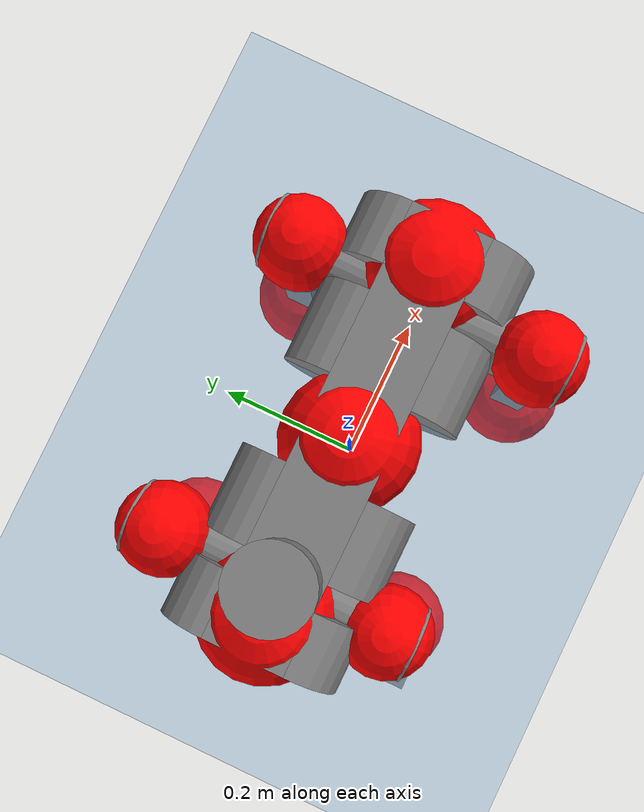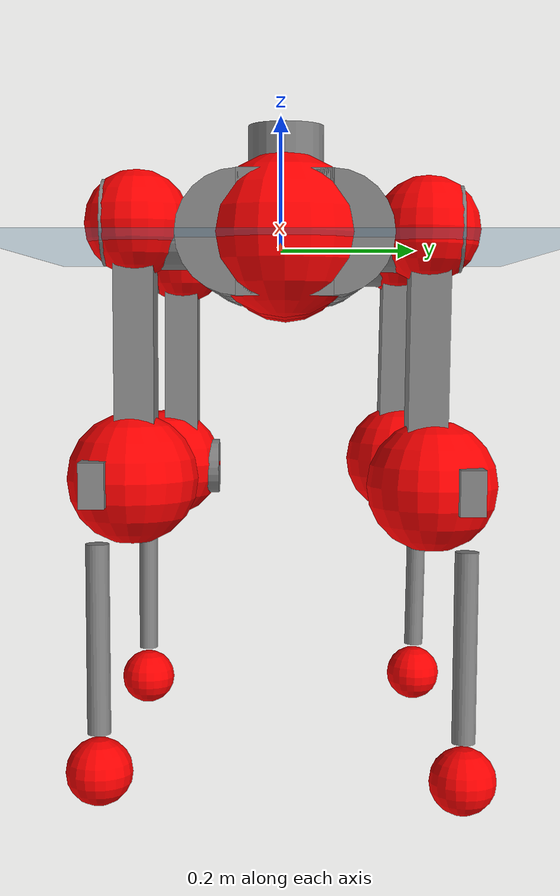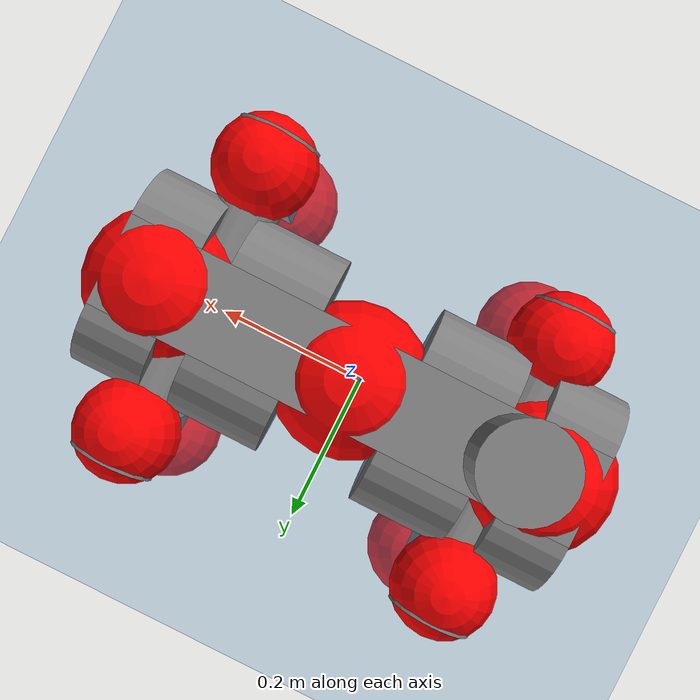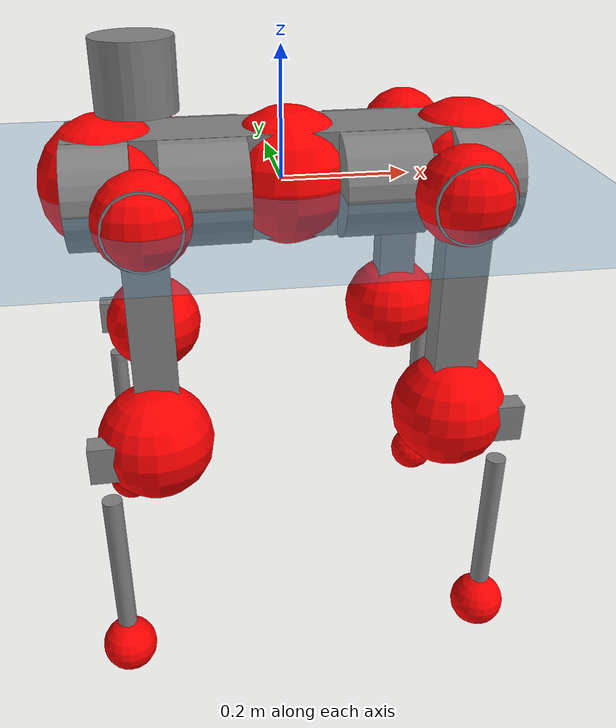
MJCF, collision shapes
<mujoco model="anymal_c">
  <compiler angle="radian" assetdir="assets" balanceinertia="true" inertiafromgeom="false"/>

  <option timestep="0.005" density="1.2" viscosity="2e-05"/>

  <size nkey="1"/>

  <visual>
    <quality shadowsize="8192"/>
    <map shadowclip="0.5"/>
  </visual>

  <default>
    <default class="/">
      <material specular="0" shininess="0.25"/>
      <geom contype="0" conaffinity="0" group="1" solref="-1000 -80"/>
      <site size="0.01 0.005 0.005" group="5"/>
      <general forcelimited="true" forcerange="-80 80" biastype="affine" gainprm="80" biasprm="0 -80 -2"/>
      <default class="anymal_c">
        <joint armature="0.01" damping="0.01" frictionloss="0.1"/>
        <default class="visual">
          <geom type="mesh" group="2"/>
          <default class="visual_zflip"/>
        </default>
        <default class="collision">
          <geom type="cylinder" group="3"/>
          <default class="foot">
            <geom size="0.03 0 0" type="sphere" condim="6" priority="1" friction="0.8 0.02 0.01" solimp="0.015 1 0.03"/>
          </default>
        </default>
      </default>
      <default class="reward_collision_sphere">
        <geom group="5" rgba="1 0 0 1"/>
      </default>
    </default>
  </default>

  <asset>
    <texture type="skybox" colorspace="auto" name="//unnamed_texture_0" builtin="gradient" rgb1="0.95 0.95 0.95" rgb2="0.95 0.95 0.95" width="100" height="600"/>
    <texture type="2d" colorspace="auto" name="texplane" builtin="checker" rgb1="0.345 0.575 0.748" rgb2="0.345 0.575 0.748" markrgb="1 1 1" width="512" height="512"/>
    <texture type="2d" colorspace="linear" name="base" file="base.png"/>
    <texture type="2d" colorspace="linear" name="top_shell" file="top_shell.png"/>
    <texture type="2d" colorspace="linear" name="bottom_shell" file="bottom_shell.png"/>
    <texture type="2d" colorspace="linear" name="remote" file="remote.png"/>
    <texture type="2d" colorspace="linear" name="hatch" file="hatch.png"/>
    <texture type="2d" colorspace="linear" name="handle" file="handle.png"/>
    <texture type="2d" colorspace="linear" name="face" file="face.png"/>
    <texture type="2d" colorspace="linear" name="battery" file="battery.png"/>
    <texture type="2d" colorspace="linear" name="lidar_cage" file="lidar_cage.png"/>
    <texture type="2d" colorspace="linear" name="depth_camera" file="depth_camera.png"/>
    <texture type="2d" colorspace="linear" name="wide_angle_camera" file="wide_angle_camera.png"/>
    <texture type="2d" colorspace="linear" name="lidar" file="lidar.png"/>
    <texture type="2d" colorspace="linear" name="drive" file="drive.png"/>
    <texture type="2d" colorspace="linear" name="hip_l" file="hip_l.png"/>
    <texture type="2d" colorspace="linear" name="shank_l" file="shank_l.png"/>
    <texture type="2d" colorspace="linear" name="foot" file="foot.png"/>
    <texture type="2d" colorspace="linear" name="thigh" file="thigh.png"/>
    <texture type="2d" colorspace="linear" name="shank_r" file="shank_r.png"/>
    <texture type="2d" colorspace="linear" name="hip_r" file="hip_r.png"/>
    <material name="MatPlane" class="/" texture="texplane" texuniform="true" texrepeat="2 2" specular="0.9" shininess="0.5"/>
    <material name="black_plastic" class="/" rgba="0.007 0.007 0.007 1"/>
    <material name="green" class="/" rgba="0.052 0.178 0.033 1"/>
    <material name="red" class="/" rgba="0.178 0.006 0.005 1"/>
    <material name="yellow" class="/" rgba="0.178 0.119 0.006 1"/>
    <material name="lwl" class="/" rgba="0.8 0.8 0.8 1"/>
    <material name="base" class="/" texture="base"/>
    <material name="top_shell" class="/" texture="top_shell"/>
    <material name="bottom_shell" class="/" texture="bottom_shell"/>
    <material name="hip_l" class="/" texture="hip_l"/>
    <material name="thigh" class="/" texture="thigh"/>
    <material name="shank_l" class="/" texture="shank_l"/>
    <material name="foot" class="/" texture="foot"/>
    <material name="hip_r" class="/" texture="hip_r"/>
    <material name="shank" class="/" texture="shank_r"/>
    <material name="hatch" class="/" texture="hatch"/>
    <material name="remote" class="/" texture="remote"/>
    <material name="handle" class="/" texture="handle"/>
    <material name="face" class="/" texture="face"/>
    <material name="depth_camera" class="/" texture="depth_camera"/>
    <material name="wide_angle_camera" class="/" texture="wide_angle_camera"/>
    <material name="battery" class="/" texture="battery"/>
    <material name="lidar_cage" class="/" texture="lidar_cage"/>
    <material name="lidar" class="/" texture="lidar"/>
    <material name="drive" class="/" texture="drive"/>
    <mesh name="base_0" class="/" file="base_0.obj"/>
    <mesh name="base_1" class="/" file="base_1.obj"/>
    <mesh name="base_2" class="/" file="base_2.obj"/>
    <mesh name="base_3" class="/" file="base_3.obj"/>
    <mesh name="base_4" class="/" file="base_4.obj"/>
    <mesh name="base_5" class="/" file="base_5.obj"/>
    <mesh name="top_shell" class="/" file="top_shell.obj"/>
    <mesh name="bottom_shell" class="/" file="bottom_shell.obj"/>
    <mesh name="remote" class="/" file="remote.obj"/>
    <mesh name="handle" class="/" file="handle.obj"/>
    <mesh name="face" class="/" file="face.obj"/>
    <mesh name="wide_angle_camera" class="/" file="wide_angle_camera.obj"/>
    <mesh name="depth_camera" class="/" file="depth_camera.obj"/>
    <mesh name="battery" class="/" file="battery.obj"/>
    <mesh name="lidar_cage" class="/" file="lidar_cage.obj"/>
    <mesh name="lidar" class="/" file="lidar.obj"/>
    <mesh name="drive" class="/" file="drive.obj"/>
    <mesh name="hip_l" class="/" file="hip_l.obj"/>
    <mesh name="thigh" class="/" file="thigh.obj"/>
    <mesh name="shank_l" class="/" file="shank_l.obj"/>
    <mesh name="foot" class="/" file="foot.obj"/>
    <mesh name="hip_r" class="/" file="hip_r.obj"/>
    <mesh name="hatch" class="/" file="hatch.obj"/>
    <mesh name="shank_r" class="/" file="shank_r.obj"/>
  </asset>

  <worldbody>
    <geom name="floor" class="/" size="100 100 0.125" type="plane" group="0" material="MatPlane"/>
    <light name="toplight_shadow" class="/" pos="0 0 5" dir="0.0990148 0.0990148 -0.990148" type="directional" ambient="0.04 0.04 0.04" diffuse="0.55 0.55 0.55" specular="0.12 0.12 0.12"/>
    <light name="toplight_fill" class="/" pos="0 0 5" dir="0.0990148 0.0990148 -0.990148" type="directional" castshadow="false" ambient="0.04 0.04 0.04" diffuse="0.3 0.3 0.3" specular="0.08 0.08 0.08"/>
    <body name="trunk" childclass="anymal_c" pos="0.0109813 0.00682597 0.00300447" quat="0.999991 -0.00145876 -0.00333704 -0.00205988">
      <inertial pos="0.0131889 -0.00143898 0.0582902" quat="0.507135 0.50364 0.487962 0.501053" mass="12.8145" diaginertia="0.0546431 0.275296 0.473665"/>
      <joint name="//unnamed_joint_0" type="free" armature="0" damping="0" frictionloss="0"/>
      <geom name="//unnamed_geom_1" class="visual" material="green" mesh="base_0"/>
      <geom name="//unnamed_geom_2" class="visual" material="yellow" mesh="base_1"/>
      <geom name="//unnamed_geom_3" class="visual" material="red" mesh="base_2"/>
      <geom name="//unnamed_geom_4" class="visual" material="black_plastic" mesh="base_3"/>
      <geom name="//unnamed_geom_5" class="visual" material="lwl" mesh="base_4"/>
      <geom name="//unnamed_geom_6" class="visual" material="base" mesh="base_5"/>
      <geom name="trunk_1" class="collision" size="0.258102 0.0623004 0.0801005" type="box"/>
      <geom name="trunk_2" class="collision" size="0.0801005 0.0645254" pos="0.133244 0.0596295 0" quat="0.707107 0 0.707107 0"/>
      <geom name="trunk_3" class="collision" size="0.0801005 0.0645254" pos="-0.133244 0.0596295 0" quat="0.707107 0 0.707107 0"/>
      <geom name="trunk_4" class="collision" size="0.0801005 0.0645254" pos="0.133244 -0.0596295 0" quat="0.707107 0 0.707107 0"/>
      <geom name="trunk_5" class="collision" size="0.0801005 0.0645254" pos="-0.133244 -0.0596295 0" quat="0.707107 0 0.707107 0"/>
      <geom name="//unnamed_geom_12" class="visual" material="top_shell" mesh="top_shell"/>
      <geom name="//unnamed_geom_13" class="visual" material="bottom_shell" mesh="bottom_shell"/>
      <geom name="//unnamed_geom_14" class="visual" material="remote" mesh="remote"/>
      <geom name="//unnamed_geom_15" class="visual" material="handle" mesh="handle"/>
      <geom name="//unnamed_geom_16" class="visual" pos="0.25393 0 0" quat="1 0 0 0" material="face" mesh="face"/>
      <geom name="trunk_6" class="collision" size="0.0489503 0.0623004 0.0801005" pos="0.287624 0 0" type="box"/>
      <geom name="//unnamed_geom_18" class="collision" size="0.0801005 0.0489503" pos="0.287624 0.0596295 0" quat="0.707107 0 0.707107 0"/>
      <geom name="//unnamed_geom_19" class="collision" size="0.0801005 0.0489503" pos="0.287624 -0.0596295 0" quat="0.707107 0 0.707107 0"/>
      <geom name="//unnamed_geom_20" class="visual" pos="0.282839 0 -0.0397084" quat="0.965926 0 0.258819 0" material="depth_camera" mesh="depth_camera"/>
      <geom name="//unnamed_geom_21" class="visual" pos="0.314272 0 0.0180471" material="wide_angle_camera" mesh="wide_angle_camera"/>
      <geom name="//unnamed_geom_22" class="visual_zflip" pos="-0.25393 0 0" quat="0 0 0 1" material="face" mesh="face"/>
      <geom name="trunk_7" class="collision" size="0.0489503 0.0623004 0.0801005" pos="-0.287624 0 0" quat="0 0 0 1" type="box"/>
      <geom name="//unnamed_geom_24" class="collision" size="0.0801005 0.0489503" pos="-0.287624 -0.0596295 0" quat="0 -0.707107 0 0.707107"/>
      <geom name="//unnamed_geom_25" class="collision" size="0.0801005 0.0489503" pos="-0.287624 0.0596295 0" quat="0 -0.707107 0 0.707107"/>
      <geom name="//unnamed_geom_26" class="visual" pos="-0.282839 0 -0.0397084" quat="0 -0.258819 0 0.965926" material="depth_camera" mesh="depth_camera"/>
      <geom name="//unnamed_geom_27" class="visual_zflip" pos="-0.314272 0 0.0180471" quat="0 0 0 1" material="wide_angle_camera" mesh="wide_angle_camera"/>
      <geom name="//unnamed_geom_28" class="visual" material="battery" mesh="battery"/>
      <geom name="//unnamed_geom_29" class="visual" pos="0 0.0682962 0.030515" quat="0.683013 -0.183013 0.183013 0.683013" material="depth_camera" mesh="depth_camera"/>
      <geom name="//unnamed_geom_30" class="visual" pos="0 -0.0682962 0.030515" quat="0.683013 0.183013 0.183013 -0.683013" material="depth_camera" mesh="depth_camera"/>
      <geom name="//unnamed_geom_31" class="visual" pos="-0.222993 0 0.0886081" quat="1 0 0 0" material="lidar_cage" mesh="lidar_cage"/>
      <geom name="trunk_8" class="collision" size="0.0623004 0.0534004" pos="-0.222993 0 0.160941"/>
      <geom name="//unnamed_geom_33" class="visual" pos="-0.222993 9.39881e-05 0.171429" quat="0.707107 0 0 -0.707107" material="lidar" mesh="lidar"/>
      <geom name="//unnamed_geom_34" class="visual" pos="0.183724 0.088718 -6.1014e-09" quat="0.258819 0.965926 0 0" material="drive" mesh="drive"/>
      <geom name="//unnamed_geom_35" class="visual" pos="0.183724 -0.088718 6.1014e-09" quat="0.258819 -0.965926 0 0" material="drive" mesh="drive"/>
      <geom name="//unnamed_geom_36" class="visual" pos="-0.183724 0.088718 6.1014e-09" quat="0 0 0.965926 -0.258819" material="drive" mesh="drive"/>
      <geom name="//unnamed_geom_37" class="visual" pos="-0.183724 -0.088718 -6.1014e-09" quat="0 0 -0.965926 -0.258819" material="drive" mesh="drive"/>
      <geom name="//unnamed_geom_38" class="visual" pos="0.0710636 0 0.0880053" quat="1 0 0 0" material="hatch" mesh="hatch"/>
      <geom name="//unnamed_geom_39" class="reward_collision_sphere" size="0.106801"/>
      <geom name="//unnamed_geom_40" class="reward_collision_sphere" size="0.106801" pos="0.275678 0 0"/>
      <geom name="//unnamed_geom_41" class="reward_collision_sphere" size="0.106801" pos="-0.275678 0 0"/>
      <site name="imu" pos="0.160418 -0.00616103 0.063254" size="0.00890006"/>
      <camera name="track" pos="0 -1.7037 0" quat="0.707107 0.707107 0 0" mode="trackcom"/>
      <camera name="ego_camera" pos="0.275678 0 -0.0482221" quat="-0.5 -0.5 0.5 0.5"/>
      <body name="LF_HIP" pos="0.18951 0.0945479 -0.00302352" quat="0.263815 0.964571 -0.00100402 -0.00154736">
        <inertial pos="0.0466251 -0.0083381 -0.00520248" quat="-0.129484 0.713614 -0.13083 0.675923" mass="1.72215" diaginertia="0.000446121 0.00220089 0.00694829"/>
        <joint name="LF_HAA" pos="0 0 0" axis="0.999999 0.000615328 -0.00111961" stiffness="0.0105107" range="-0.746113 0.673672" armature="0.00548696" damping="0.0381015" frictionloss="0.0739282"/>
        <geom name="//unnamed_geom_42" class="visual" pos="0 -0.000358918 5.8952e-05" quat="0.258819 -0.965926 0 0" material="hip_l" mesh="hip_l"/>
        <geom name="//unnamed_geom_43" class="visual" pos="0.0366957 -0.0477402 -0.030179" quat="0.183013 -0.683013 0.683013 0.183013" material="drive" mesh="drive"/>
        <geom name="//unnamed_geom_44" class="collision" size="0.0445003 0.0623004" pos="0.0366957 -0.0101879 -0.00832434" quat="-0.353553 -0.612372 0.612372 -0.353553"/>
        <body name="LF_THIGH" pos="0.0407244 -0.0614498 -0.0538628" quat="0.182196 -0.683487 0.682802 0.182842">
          <inertial pos="0.00795515 0.000652974 -0.305914" quat="0.992541 -0.00240511 -0.0833246 0.0889545" mass="2.2338" diaginertia="0.00262099 0.0133882 0.0112261"/>
          <joint name="LF_HFE" pos="0 0 0" axis="0.999802 0.00966906 -0.017404" range="-2.97172 2.985" armature="0.00553177" damping="0.0619409" frictionloss="0.0698716"/>
          <geom name="//unnamed_geom_45" class="visual" pos="-0.00475979 -7.50031e-06 0" quat="0.707107 0 0 -0.707107" material="thigh" mesh="thigh"/>
          <geom name="//unnamed_geom_46" class="collision" size="0.0578504 0.0356002" pos="0.0245047 0 0" quat="0.5 0.5 -0.5 -0.5"/>
          <geom name="//unnamed_geom_47" class="collision" size="0.0333752 0.0267002 0.12577" pos="0.0183785 0 -0.170361" quat="0.707107 0 0 -0.707107" type="box"/>
          <geom name="//unnamed_geom_48" class="visual" pos="0.0614455 0 -0.343582" quat="1 0 0 0" material="drive" mesh="drive"/>
          <geom name="//unnamed_geom_49" class="collision" size="0.0445003 0.0623004" pos="0.0185623 0 -0.343582" quat="0.707107 0 0.707107 0"/>
          <geom name="//unnamed_geom_50" class="reward_collision_sphere" size="0.0712005" pos="0.0153154 0 0"/>
          <body name="LF_SHANK" pos="0.0591637 -0.000806197 -0.343023" quat="0.999995 -0.00194327 -0.0019425 0.00142921">
            <inertial pos="-0.00207628 -0.0568146 -0.0897558" quat="0.996129 -0.0740343 -0.00511936 -0.0471139" mass="0.403952" diaginertia="0.000895323 0.00388979 0.00305736"/>
            <joint name="LF_KFE" pos="0 0 0" axis="0.999992 -0.00361785 -0.00145175" range="-3.16233 3.3163" armature="0.0113299" damping="0.00623982" frictionloss="0.0874047"/>
            <geom name="//unnamed_geom_51" class="visual" pos="-0.00155206 -0.00827568 0" quat="0.707107 0 0 -0.707107" material="shank_l" mesh="shank_l"/>
            <geom name="LF_kfe_act" class="collision" size="0.0534004 0.0178001" pos="0.0122523 0 0" quat="0.5 0.5 -0.5 -0.5"/>
            <geom name="//unnamed_geom_53" class="collision" size="0.0511745 0.0300377 0.0169101" pos="0.0122523 -0.0489805 0" quat="0.5 0.5 -0.5 -0.5" type="box"/>
            <geom name="//unnamed_geom_54" class="visual" pos="0.00799503 -0.0775871 -0.40744" quat="0.382683 0 0 -0.92388" material="foot" mesh="foot"/>
            <geom name="LF_calf" class="collision" size="0.0155751 0.125715" pos="0.00799465 -0.0749202 -0.20372" quat="0.707107 0 0 -0.707107"/>
            <geom name="LF_foot" class="foot" size="0.0260065" pos="0.00799465 -0.0749202 -0.380315" quat="0.707107 0 0 -0.707107"/>
            <geom name="//unnamed_geom_57" class="reward_collision_sphere" size="0.0890006" pos="-0.0306308 0 0"/>
            <geom name="//unnamed_geom_58" class="reward_collision_sphere" size="0.0445003" pos="0.00799465 -0.0749202 -0.380315"/>
            <site name="LF_foot" class="foot" pos="0.00799465 -0.0749202 -0.380315" quat="0.707107 0 0 -0.707107" size="0.00890006"/>
          </body>
        </body>
      </body>
      <body name="RF_HIP" pos="0.185754 -0.0974799 -0.00121399" quat="0.256867 -0.966447 -0.000301874 -0.000233738">
        <inertial pos="0.0267162 0.0116472 -0.0102166" quat="0.131821 0.683864 0.129172 0.705881" mass="1.50284" diaginertia="0.000462097 0.00203912 0.0082435"/>
        <joint name="RF_HAA" pos="0 0 0" axis="0.999975 -0.00441966 0.00553843" stiffness="0.000793939" range="-0.593396 0.754422" armature="0.01396" damping="0.00842162" frictionloss="0.0392444"/>
        <geom name="//unnamed_geom_59" class="visual" pos="0 0.000358915 5.89518e-05" quat="0.258819 0.965926 0 0" material="hip_r" mesh="hip_r"/>
        <geom name="//unnamed_geom_60" class="visual" pos="0.0366958 0.0477402 -0.030179" quat="0.183013 0.683013 0.683013 -0.183013" material="drive" mesh="drive"/>
        <geom name="//unnamed_geom_61" class="collision" size="0.0445003 0.0623004" pos="0.0366957 0.0101879 -0.00832434" quat="-0.353553 0.612372 0.612372 0.353553"/>
        <body name="RF_THIGH" pos="0.0385873 0.0632803 -0.0600534" quat="0.182821 0.683315 0.684134 -0.177813">
          <inertial pos="0.0259978 0.0117402 -0.294571" quat="0.992594 -0.00514449 -0.0810086 0.0903808" mass="2.57278" diaginertia="0.00274563 0.0144699 0.0121443"/>
          <joint name="RF_HFE" pos="0 0 0" axis="0.999998 -0.00169479 0.000730129" stiffness="0.00859184" range="-3.10409 3.19612" armature="0.00923958" damping="0.00826215" frictionloss="0.0736555"/>
          <geom name="//unnamed_geom_62" class="visual" pos="-0.00475979 -7.50031e-06 0" quat="0.707107 0 0 -0.707107" material="thigh" mesh="thigh"/>
          <geom name="//unnamed_geom_63" class="collision" size="0.0578504 0.0356002" pos="0.0245047 0 0" quat="0.5 0.5 0.5 0.5"/>
          <geom name="//unnamed_geom_64" class="collision" size="0.0333752 0.0267002 0.12577" pos="0.0183785 0 -0.170361" quat="0.707107 0 0 0.707107" type="box"/>
          <geom name="//unnamed_geom_65" class="visual" pos="0.0614455 0 -0.343582" quat="1 0 0 0" material="drive" mesh="drive"/>
          <geom name="//unnamed_geom_66" class="collision" size="0.0445003 0.0623004" pos="0.0185623 0 -0.343582" quat="0.707107 0 0.707107 0"/>
          <geom name="//unnamed_geom_67" class="reward_collision_sphere" size="0.0712005" pos="0.0153154 0 0"/>
          <body name="RF_SHANK" pos="0.0548621 0.00121875 -0.34253" quat="1 -0.000605011 0.00025055 0.000104685">
            <inertial pos="-0.00127216 0.0515029 -0.0956269" quat="0.993074 0.114837 -0.00203443 0.0247477" mass="0.363864" diaginertia="0.000694744 0.00402957 0.00259183"/>
            <joint name="RF_KFE" pos="0 0 0" axis="0.999181 -0.0179291 0.0362871" stiffness="0.0263201" range="-3.08548 3.12541" armature="0.00946215" damping="0" frictionloss="0.0836427"/>
            <geom name="//unnamed_geom_68" class="visual" pos="-0.00155205 0.00827566 0" quat="0.707107 0 0 0.707107" material="shank" mesh="shank_r"/>
            <geom name="RF_kfe_act" class="collision" size="0.0534004 0.0178001" pos="0.0122523 0 0" quat="0.5 0.5 0.5 0.5"/>
            <geom name="//unnamed_geom_70" class="collision" size="0.0511745 0.0300377 0.0169101" pos="0.0122523 0.0489805 0" quat="0.5 0.5 0.5 0.5" type="box"/>
            <geom name="//unnamed_geom_71" class="visual" pos="0.00799427 0.0775871 -0.40744" quat="0.382683 0 0 0.92388" material="foot" mesh="foot"/>
            <geom name="RF_calf" class="collision" size="0.0155751 0.125715" pos="0.00799465 0.0749202 -0.20372" quat="0.707107 0 0 0.707107"/>
            <geom name="RF_foot" class="foot" size="0.0322003" pos="0.00799465 0.0749202 -0.380315" quat="0.707107 0 0 0.707107"/>
            <geom name="//unnamed_geom_74" class="reward_collision_sphere" size="0.0890006" pos="-0.0306308 0 0"/>
            <geom name="//unnamed_geom_75" class="reward_collision_sphere" size="0.0445003" pos="0.00799465 0.0749202 -0.380315"/>
            <site name="RF_foot" class="foot" pos="0.00799465 0.0749202 -0.380315" quat="0.707107 0 0 0.707107" size="0.00890006"/>
          </body>
        </body>
      </body>
      <body name="LH_HIP" pos="-0.183306 0.0886429 -0.00531063" quat="-0.000902417 0.00193881 0.964358 -0.264592">
        <inertial pos="0.0237497 0.0135868 -0.00909504" quat="0.133476 0.678696 0.127039 0.710927" mass="1.97462" diaginertia="0.000511562 0.00204211 0.00866685"/>
        <joint name="LH_HAA" pos="0 0 0" axis="0.999991 0.00373176 0.00207052" range="-0.48635 0.730998" armature="0.00862574" damping="0.0088018" frictionloss="0.0760596"/>
        <geom name="//unnamed_geom_76" class="visual" pos="0 0.000358915 5.89518e-05" quat="-0.258819 -0.965926 0 0" material="hip_r" mesh="hip_r"/>
        <geom name="//unnamed_geom_77" class="visual" pos="0.0366958 0.0477402 -0.030179" quat="0.183013 0.683013 0.683013 -0.183013" material="drive" mesh="drive"/>
        <geom name="//unnamed_geom_78" class="collision" size="0.0445003 0.0623004" pos="0.0366957 0.0101879 -0.00832434" quat="-0.353553 0.612372 0.612372 0.353553"/>
        <body name="LH_THIGH" pos="0.047037 0.0584192 -0.0578184" quat="0.18086 0.686694 0.680284 -0.181532">
          <inertial pos="0.0174295 0.000278349 -0.29591" quat="0.997127 -0.0121275 -0.0443509 0.0601989" mass="2.41222" diaginertia="0.00256671 0.0148031 0.0103945"/>
          <joint name="LH_HFE" pos="0 0 0" axis="0.999814 -0.0182055 -0.00631773" stiffness="0.00572198" range="-3.14739 3.10704" armature="0.0114287" damping="0.062092" frictionloss="0.1001"/>
          <geom name="//unnamed_geom_79" class="visual" pos="-0.00475979 -7.50031e-06 0" quat="0.707107 0 0 -0.707107" material="thigh" mesh="thigh"/>
          <geom name="//unnamed_geom_80" class="collision" size="0.0578504 0.0356002" pos="0.0245047 0 0" quat="0.5 0.5 -0.5 -0.5"/>
          <geom name="//unnamed_geom_81" class="collision" size="0.0333752 0.0267002 0.12577" pos="0.0183785 0 -0.170361" quat="0.707107 0 0 -0.707107" type="box"/>
          <geom name="//unnamed_geom_82" class="visual" pos="0.0614455 0 -0.343582" quat="1 0 0 0" material="drive" mesh="drive"/>
          <geom name="//unnamed_geom_83" class="collision" size="0.0445003 0.0623004" pos="0.0185623 0 -0.343582" quat="0.707107 0 0.707107 0"/>
          <geom name="//unnamed_geom_84" class="reward_collision_sphere" size="0.0712005" pos="0.0153154 0 0"/>
          <body name="LH_SHANK" pos="0.0594678 -0.000239008 -0.347911" quat="1 0.000232211 -0.00010388 0.000281431">
            <inertial pos="0.00378677 0.0514357 -0.10248" quat="0.99284 0.116052 -0.000983827 0.0282765" mass="0.413586" diaginertia="0.00087898 0.0042986 0.00285083"/>
            <joint name="LH_KFE" pos="0 0 0" axis="0.999965 0.00795455 0.00242383" range="-3.11597 3.14404" armature="0.0109246" damping="0.053665" frictionloss="0.0818009"/>
            <geom name="//unnamed_geom_85" class="visual" pos="-0.00155205 0.00827566 0" quat="-0.707107 0 0 -0.707107" material="shank" mesh="shank_r"/>
            <geom name="LH_kfe_act" class="collision" size="0.0534004 0.0178001" pos="0.0122523 0 0" quat="0.5 0.5 -0.5 -0.5"/>
            <geom name="//unnamed_geom_87" class="collision" size="0.0511745 0.0300377 0.0169101" pos="0.0122523 0.0489805 0" quat="0.5 0.5 -0.5 -0.5" type="box"/>
            <geom name="//unnamed_geom_88" class="visual" pos="0.00799427 0.0775871 -0.40744" quat="-0.382683 0 0 -0.92388" material="foot" mesh="foot"/>
            <geom name="LH_calf" class="collision" size="0.0155751 0.125715" pos="0.00799465 0.0749202 -0.20372" quat="0.707107 0 0 -0.707107"/>
            <geom name="LH_foot" class="foot" size="0.0200489" pos="0.00799465 0.0749202 -0.380315" quat="0.707107 0 0 -0.707107"/>
            <geom name="//unnamed_geom_91" class="reward_collision_sphere" size="0.0890006" pos="-0.0306308 0 0"/>
            <geom name="//unnamed_geom_92" class="reward_collision_sphere" size="0.0445003" pos="0.00799465 0.0749202 -0.380315"/>
            <site name="LH_foot" class="foot" pos="0.00799465 0.0749202 -0.380315" quat="0.707107 0 0 -0.707107" size="0.00890006"/>
          </body>
        </body>
      </body>
      <body name="RH_HIP" pos="-0.187615 -0.0780645 -0.00819117" quat="-0.0012032 0.00330711 -0.96585 -0.259078">
        <inertial pos="0.0346567 -0.0211413 -0.0108297" quat="-0.147402 0.681757 -0.167096 0.696821" mass="1.9114" diaginertia="0.000462311 0.00200086 0.00852915"/>
        <joint name="RH_HAA" pos="0 0 0" axis="0.999999 0.00103537 0.000786932" range="-0.722293 0.527374" armature="0.00357846" damping="0" frictionloss="0.130244"/>
        <geom name="//unnamed_geom_93" class="visual" pos="0 -0.000358918 5.8952e-05" quat="-0.258819 0.965926 0 0" material="hip_l" mesh="hip_l"/>
        <geom name="//unnamed_geom_94" class="visual" pos="0.0366957 -0.0477402 -0.030179" quat="-0.183013 0.683013 -0.683013 -0.183013" material="drive" mesh="drive"/>
        <geom name="//unnamed_geom_95" class="collision" size="0.0445003 0.0623004" pos="0.0366957 -0.0101879 -0.00832434" quat="0.353553 0.612372 -0.612372 0.353553"/>
        <body name="RH_THIGH" pos="0.0394615 -0.0619232 -0.0419522" quat="-0.182677 0.682463 -0.683168 -0.184808">
          <inertial pos="0.0197481 0.00418079 -0.294521" quat="0.993213 -0.00523173 -0.0847482 0.0794819" mass="2.35558" diaginertia="0.00281253 0.0136381 0.0123953"/>
          <joint name="RH_HFE" pos="0 0 0" axis="0.999999 -0.000756646 -0.00109447" stiffness="0.0324048" range="-2.93999 3.02733" armature="0.00686674" damping="0.00795843" frictionloss="0.0951642"/>
          <geom name="//unnamed_geom_96" class="visual" pos="-0.00475979 -7.50031e-06 0" quat="0.707107 0 0 -0.707107" material="thigh" mesh="thigh"/>
          <geom name="//unnamed_geom_97" class="collision" size="0.0578504 0.0356002" pos="0.0245047 0 0" quat="0.5 0.5 0.5 0.5"/>
          <geom name="//unnamed_geom_98" class="collision" size="0.0333752 0.0267002 0.12577" pos="0.0183785 0 -0.170361" quat="0.707107 0 0 0.707107" type="box"/>
          <geom name="//unnamed_geom_99" class="visual" pos="0.0614455 0 -0.343582" quat="1 0 0 0" material="drive" mesh="drive"/>
          <geom name="//unnamed_geom_100" class="collision" size="0.0445003 0.0623004" pos="0.0185623 0 -0.343582" quat="0.707107 0 0.707107 0"/>
          <geom name="//unnamed_geom_101" class="reward_collision_sphere" size="0.0712005" pos="0.0153154 0 0"/>
          <body name="RH_SHANK" pos="0.0745502 -0.00744561 -0.339326" quat="1 -6.39737e-05 2.41761e-05 -8.0154e-06">
            <inertial pos="-0.00895276 -0.0518976 -0.102221" quat="0.991268 -0.12712 -0.00400451 -0.0348146" mass="0.403336" diaginertia="0.000939416 0.00515568 0.00299436"/>
            <joint name="RH_KFE" pos="0 0 0" axis="0.999995 0.00058091 0.00309668" stiffness="0.00189634" range="-3.28335 2.88796" armature="0.0128036" damping="0.00887865" frictionloss="0.0820883"/>
            <geom name="//unnamed_geom_102" class="visual" pos="-0.00155206 -0.00827568 0" quat="0.707107 0 0 -0.707107" material="shank_l" mesh="shank_l"/>
            <geom name="RH_kfe_act" class="collision" size="0.0534004 0.0178001" pos="0.0122523 0 0" quat="0.5 0.5 0.5 0.5"/>
            <geom name="//unnamed_geom_104" class="collision" size="0.0511745 0.0300377 0.0169101" pos="0.0122523 -0.0489805 0" quat="0.5 0.5 0.5 0.5" type="box"/>
            <geom name="//unnamed_geom_105" class="visual" pos="0.00799503 -0.0775871 -0.40744" quat="0.382683 0 0 -0.92388" material="foot" mesh="foot"/>
            <geom name="RH_calf" class="collision" size="0.0155751 0.125715" pos="0.00799465 -0.0749202 -0.20372" quat="0.707107 0 0 0.707107"/>
            <geom name="RH_foot" class="foot" size="0.0296417" pos="0.00799465 -0.0749202 -0.380315" quat="0.707107 0 0 0.707107"/>
            <geom name="//unnamed_geom_108" class="reward_collision_sphere" size="0.0890006" pos="-0.0306308 0 0"/>
            <geom name="//unnamed_geom_109" class="reward_collision_sphere" size="0.0445003" pos="0.00799465 -0.0749202 -0.380315"/>
            <site name="RH_foot" class="foot" pos="0.00799465 -0.0749202 -0.380315" quat="0.707107 0 0 0.707107" size="0.00890006"/>
          </body>
        </body>
      </body>
    </body>
  </worldbody>

  <contact>
    <pair class="/" geom1="floor" geom2="LF_foot" name="//unnamed_contact_0"/>
    <pair class="/" geom1="floor" geom2="RF_foot" name="//unnamed_contact_1"/>
    <pair class="/" geom1="floor" geom2="LH_foot" name="//unnamed_contact_2"/>
    <pair class="/" geom1="floor" geom2="RH_foot" name="//unnamed_contact_3"/>
  </contact>

  <actuator>
    <general name="LF_HAA" class="/" joint="LF_HAA" forcerange="-69.365 69.365" gainprm="68.6779" biasprm="0 -68.6779 -1.94969"/>
    <general name="LF_HFE" class="/" joint="LF_HFE" forcerange="-83.5848 83.5848" gainprm="68.6779" biasprm="0 -68.6779 -1.94969"/>
    <general name="LF_KFE" class="/" joint="LF_KFE" forcerange="-72.9643 72.9643" gainprm="68.6779" biasprm="0 -68.6779 -1.94969"/>
    <general name="RF_HAA" class="/" joint="RF_HAA" forcerange="-39.1712 39.1712" gainprm="68.6779" biasprm="0 -68.6779 -1.94969"/>
    <general name="RF_HFE" class="/" joint="RF_HFE" forcerange="-74.8812 74.8812" gainprm="68.6779" biasprm="0 -68.6779 -1.94969"/>
    <general name="RF_KFE" class="/" joint="RF_KFE" forcerange="-91.1186 91.1186" gainprm="68.6779" biasprm="0 -68.6779 -1.94969"/>
    <general name="LH_HAA" class="/" joint="LH_HAA" forcerange="-70.0546 70.0546" gainprm="68.6779" biasprm="0 -68.6779 -1.94969"/>
    <general name="LH_HFE" class="/" joint="LH_HFE" forcerange="-70.2529 70.2529" gainprm="68.6779" biasprm="0 -68.6779 -1.94969"/>
    <general name="LH_KFE" class="/" joint="LH_KFE" forcerange="-75.9642 75.9642" gainprm="68.6779" biasprm="0 -68.6779 -1.94969"/>
    <general name="RH_HAA" class="/" joint="RH_HAA" forcerange="-73.1523 73.1523" gainprm="68.6779" biasprm="0 -68.6779 -1.94969"/>
    <general name="RH_HFE" class="/" joint="RH_HFE" forcerange="-76.8749 76.8749" gainprm="68.6779" biasprm="0 -68.6779 -1.94969"/>
    <general name="RH_KFE" class="/" joint="RH_KFE" forcerange="-44.5374 44.5374" gainprm="68.6779" biasprm="0 -68.6779 -1.94969"/>
  </actuator>

  <sensor>
    <gyro site="imu" name="imu_angular_velocity"/>
    <velocimeter site="imu" name="imu_linear_velocity"/>
    <framelinvel objtype="site" objname="LF_foot" name="LF_foot_global_linear_velocity"/>
    <framelinvel objtype="site" objname="RF_foot" name="RF_foot_global_linear_velocity"/>
    <framelinvel objtype="site" objname="LH_foot" name="LH_foot_global_linear_velocity"/>
    <framelinvel objtype="site" objname="RH_foot" name="RH_foot_global_linear_velocity"/>
  </sensor>

  <keyframe>
    <key name="home" qpos="0 0 0.55 1 0 0 0 0 0.4 -0.8 0 -0.4 0.8 0 -0.4 0.8 0 0.4 -0.8"/>
  </keyframe>
</mujoco>
